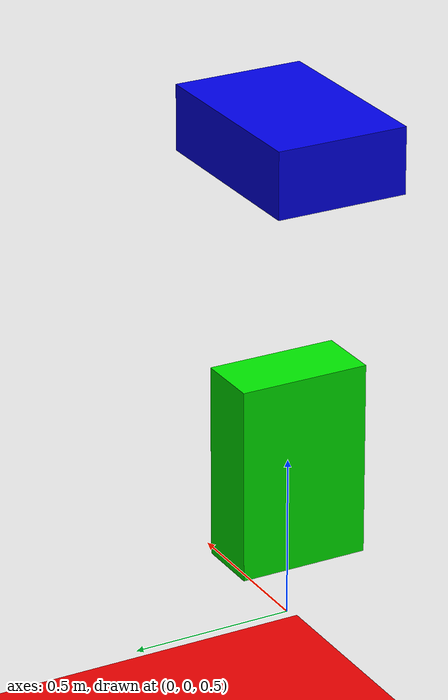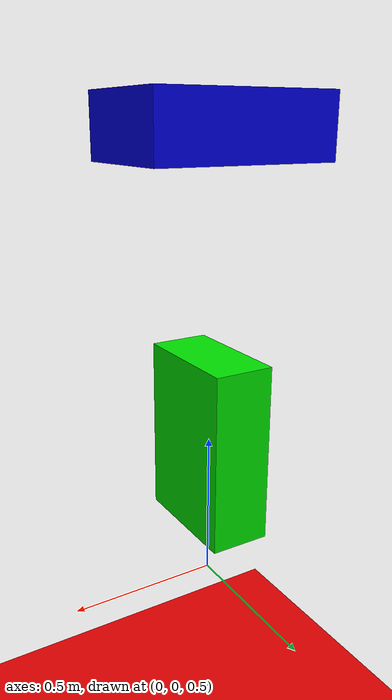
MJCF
<mujoco>
  <option gravity="0 0 0"/>
  <worldbody>
    <light diffuse=".5 .5 .5" pos="0 0 3" dir="0 0 -1"/>
    <geom type="plane" size="1 1 0.1" rgba=".9 0 0 1"/>
    <body pos="0 0 1">
      <joint type="free"/>
      <geom type="box" size=".1 .2 .3" rgba="0 .9 0 1"/>
    </body>
    <body pos="0 0 2" euler="0 90 0">
      <joint type="free"/>
      <geom type="box" size=".1 .2 .3" rgba="0 0 0.9 1"/>
    </body>
  </worldbody>
</mujoco>
